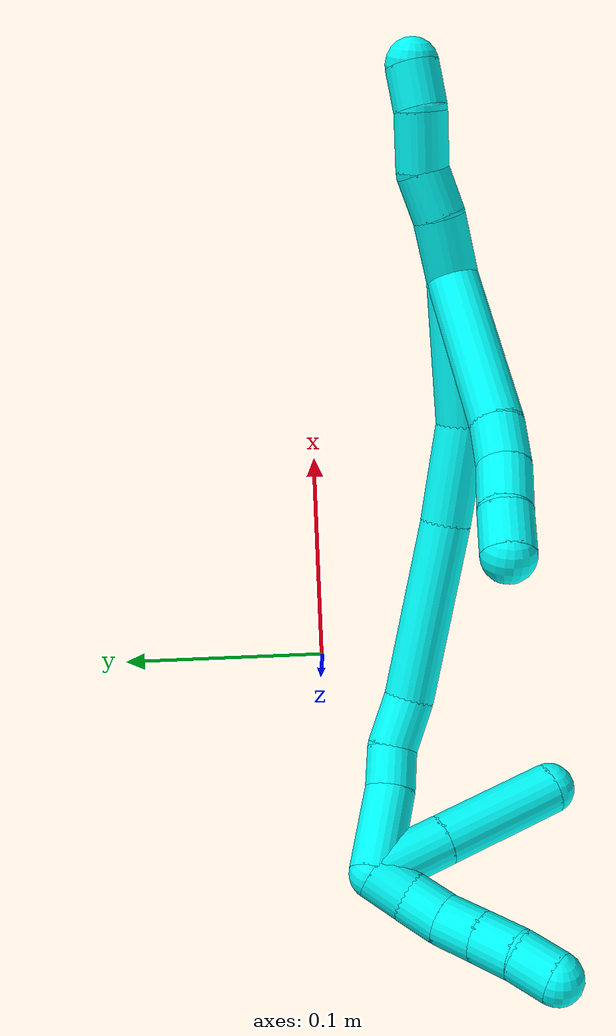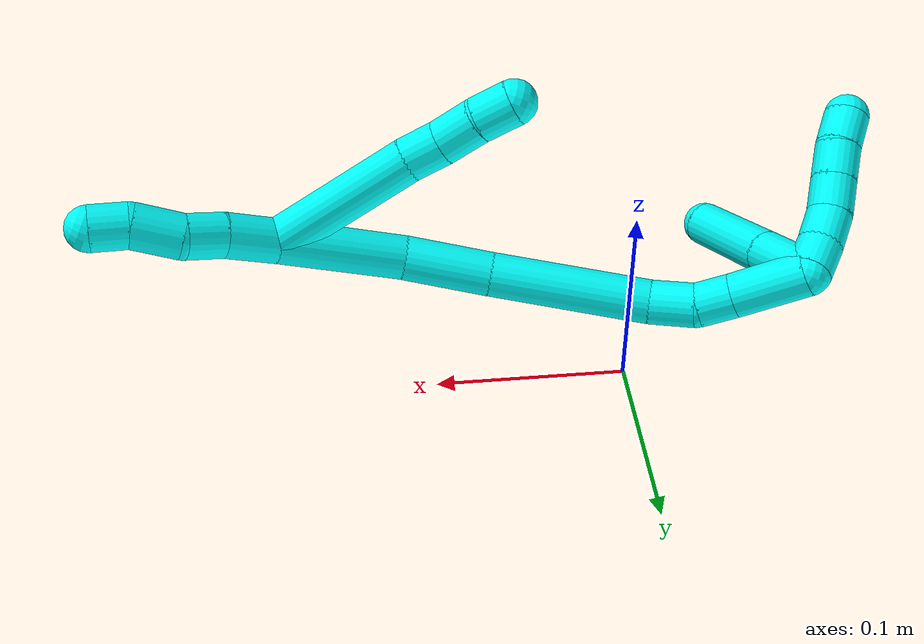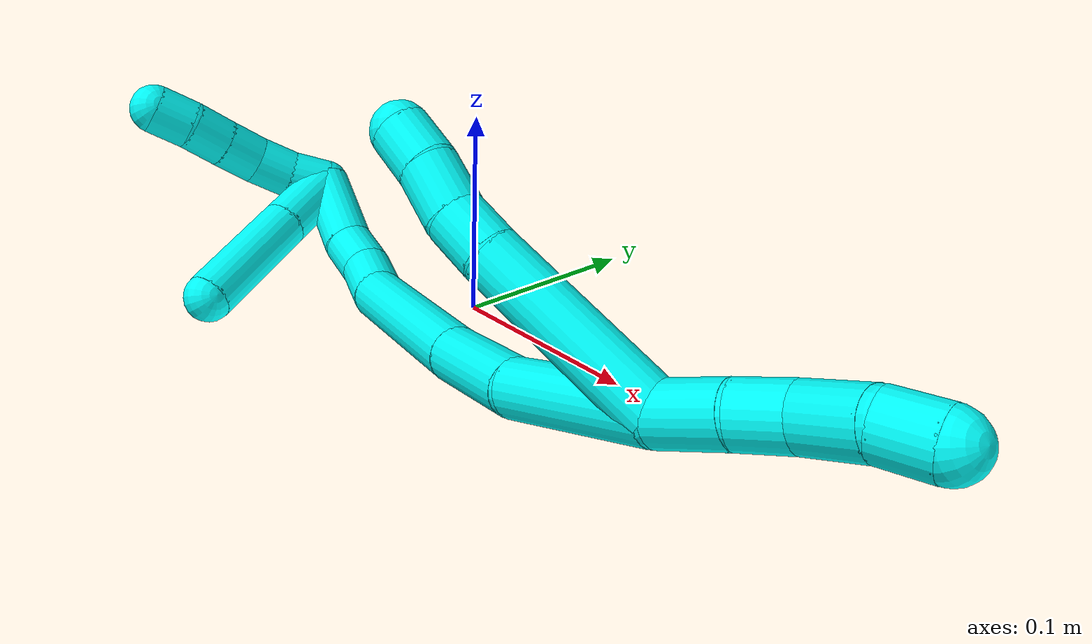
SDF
<sdf version="1.7">
 <world name="default">
  <model name="3">
   <static>0</static>
   <link name="3">
    <collision name="collision-cylinder-e_1_2_8">
     <pose>-0.033715 -0.006494 -0.023693 2.87405 -0.941091 -2.62431</pose>
     <geometry><cylinder><radius>0.0125</radius><length>0.083433</length></cylinder></geometry>
     <surface>
      <friction><ode><mu>1.16</mu><mu2>1.16</mu2><slip1>0</slip1><slip2>0</slip2></ode></friction>
      <contact><ode><kp>1e+06</kp><kd>1</kd><max_vel>0</max_vel><min_depth>0.001</min_depth></ode></contact>
     </surface>
    </collision>
    <visual name="visual-cylinder-e_1_2_8">
     <pose>-0.033715 -0.006494 -0.023693 2.87405 -0.941091 -2.62431</pose>
     <geometry><cylinder><radius>0.0125</radius><length>0.083433</length></cylinder></geometry>
     <material><ambient>0.003922 1 0.996078 1</ambient></material>
    </visual>
    <collision name="collision-cylinder-e_2_8_9">
     <pose>-0.075836 -0.013506 -0.053854 3.06181 -0.913425 -2.97949</pose>
     <geometry><cylinder><radius>0.0125</radius><length>0.021237</length></cylinder></geometry>
     <surface>
      <friction><ode><mu>1.16</mu><mu2>1.16</mu2><slip1>0</slip1><slip2>0</slip2></ode></friction>
      <contact><ode><kp>1e+06</kp><kd>1</kd><max_vel>0</max_vel><min_depth>0.001</min_depth></ode></contact>
     </surface>
    </collision>
    <visual name="visual-cylinder-e_2_8_9">
     <pose>-0.075836 -0.013506 -0.053854 3.06181 -0.913425 -2.97949</pose>
     <geometry><cylinder><radius>0.0125</radius><length>0.021237</length></cylinder></geometry>
     <material><ambient>0.003922 1 0.996078 1</ambient></material>
    </visual>
    <collision name="collision-cylinder-e_3_9_10">
     <pose>-0.094668 -0.012794 -0.066008 -2.92875 -1.06186 2.78166</pose>
     <geometry><cylinder><radius>0.0125</radius><length>0.023879</length></cylinder></geometry>
     <surface>
      <friction><ode><mu>1.16</mu><mu2>1.16</mu2><slip1>0</slip1><slip2>0</slip2></ode></friction>
      <contact><ode><kp>1e+06</kp><kd>1</kd><max_vel>0</max_vel><min_depth>0.001</min_depth></ode></contact>
     </surface>
    </collision>
    <visual name="visual-cylinder-e_3_9_10">
     <pose>-0.094668 -0.012794 -0.066008 -2.92875 -1.06186 2.78166</pose>
     <geometry><cylinder><radius>0.0125</radius><length>0.023879</length></cylinder></geometry>
     <material><ambient>0.003922 1 0.996078 1</ambient></material>
    </visual>
    <collision name="collision-cylinder-e_4_10_6">
     <pose>-0.113756 -0.01116 -0.078007 -3.07751 -0.940003 3.01557</pose>
     <geometry><cylinder><radius>0.0125</radius><length>0.021451</length></cylinder></geometry>
     <surface>
      <friction><ode><mu>1.16</mu><mu2>1.16</mu2><slip1>0</slip1><slip2>0</slip2></ode></friction>
      <contact><ode><kp>1e+06</kp><kd>1</kd><max_vel>0</max_vel><min_depth>0.001</min_depth></ode></contact>
     </surface>
    </collision>
    <visual name="visual-cylinder-e_4_10_6">
     <pose>-0.113756 -0.01116 -0.078007 -3.07751 -0.940003 3.01557</pose>
     <geometry><cylinder><radius>0.0125</radius><length>0.021451</length></cylinder></geometry>
     <material><ambient>0.003922 1 0.996078 1</ambient></material>
    </visual>
    <collision name="collision-cylinder-e_1_2_11">
     <pose>0.001477 0.003898 0.014406 -0.264258 0.098639 -0.01312</pose>
     <geometry><cylinder><radius>0.0125</radius><length>0.029993</length></cylinder></geometry>
     <surface>
      <friction><ode><mu>1.16</mu><mu2>1.16</mu2><slip1>0</slip1><slip2>0</slip2></ode></friction>
      <contact><ode><kp>1e+06</kp><kd>1</kd><max_vel>0</max_vel><min_depth>0.001</min_depth></ode></contact>
     </surface>
    </collision>
    <visual name="visual-cylinder-e_1_2_11">
     <pose>0.001477 0.003898 0.014406 -0.264258 0.098639 -0.01312</pose>
     <geometry><cylinder><radius>0.0125</radius><length>0.029993</length></cylinder></geometry>
     <material><ambient>0.003922 1 0.996078 1</ambient></material>
    </visual>
    <collision name="collision-cylinder-e_2_11_12">
     <pose>0.004957 0.011993 0.038849 -0.396052 0.182056 -0.036628</pose>
     <geometry><cylinder><radius>0.0125</radius><length>0.022125</length></cylinder></geometry>
     <surface>
      <friction><ode><mu>1.16</mu><mu2>1.16</mu2><slip1>0</slip1><slip2>0</slip2></ode></friction>
      <contact><ode><kp>1e+06</kp><kd>1</kd><max_vel>0</max_vel><min_depth>0.001</min_depth></ode></contact>
     </surface>
    </collision>
    <visual name="visual-cylinder-e_2_11_12">
     <pose>0.004957 0.011993 0.038849 -0.396052 0.182056 -0.036628</pose>
     <geometry><cylinder><radius>0.0125</radius><length>0.022125</length></cylinder></geometry>
     <material><ambient>0.003922 1 0.996078 1</ambient></material>
    </visual>
    <collision name="collision-cylinder-e_3_12_13">
     <pose>0.00831 0.017188 0.062469 -0.073351 0.098814 -0.003629</pose>
     <geometry><cylinder><radius>0.0125</radius><length>0.027372</length></cylinder></geometry>
     <surface>
      <friction><ode><mu>1.16</mu><mu2>1.16</mu2><slip1>0</slip1><slip2>0</slip2></ode></friction>
      <contact><ode><kp>1e+06</kp><kd>1</kd><max_vel>0</max_vel><min_depth>0.001</min_depth></ode></contact>
     </surface>
    </collision>
    <visual name="visual-cylinder-e_3_12_13">
     <pose>0.00831 0.017188 0.062469 -0.073351 0.098814 -0.003629</pose>
     <geometry><cylinder><radius>0.0125</radius><length>0.027372</length></cylinder></geometry>
     <material><ambient>0.003922 1 0.996078 1</ambient></material>
    </visual>
    <collision name="collision-cylinder-e_4_13_5">
     <pose>0.013387 0.020224 0.085386 -0.214881 0.371959 -0.040581</pose>
     <geometry><cylinder><radius>0.0125</radius><length>0.020509</length></cylinder></geometry>
     <surface>
      <friction><ode><mu>1.16</mu><mu2>1.16</mu2><slip1>0</slip1><slip2>0</slip2></ode></friction>
      <contact><ode><kp>1e+06</kp><kd>1</kd><max_vel>0</max_vel><min_depth>0.001</min_depth></ode></contact>
     </surface>
    </collision>
    <visual name="visual-cylinder-e_4_13_5">
     <pose>0.013387 0.020224 0.085386 -0.214881 0.371959 -0.040581</pose>
     <geometry><cylinder><radius>0.0125</radius><length>0.020509</length></cylinder></geometry>
     <material><ambient>0.003922 1 0.996078 1</ambient></material>
    </visual>
    <collision name="collision-cylinder-e_1_2_14">
     <pose>-0.006479 -0.00352 -0.034596 3.04019 -0.18419 -2.13678</pose>
     <geometry><cylinder><radius>0.0125</radius><length>0.070747</length></cylinder></geometry>
     <surface>
      <friction><ode><mu>1.16</mu><mu2>1.16</mu2><slip1>0</slip1><slip2>0</slip2></ode></friction>
      <contact><ode><kp>1e+06</kp><kd>1</kd><max_vel>0</max_vel><min_depth>0.001</min_depth></ode></contact>
     </surface>
    </collision>
    <visual name="visual-cylinder-e_1_2_14">
     <pose>-0.006479 -0.00352 -0.034596 3.04019 -0.18419 -2.13678</pose>
     <geometry><cylinder><radius>0.0125</radius><length>0.070747</length></cylinder></geometry>
     <material><ambient>0.003922 1 0.996078 1</ambient></material>
    </visual>
    <collision name="collision-cylinder-e_2_14_15">
     <pose>-0.01947 -0.00361 -0.092905 -2.99792 -0.265419 2.15281</pose>
     <geometry><cylinder><radius>0.0125</radius><length>0.049658</length></cylinder></geometry>
     <surface>
      <friction><ode><mu>1.16</mu><mu2>1.16</mu2><slip1>0</slip1><slip2>0</slip2></ode></friction>
      <contact><ode><kp>1e+06</kp><kd>1</kd><max_vel>0</max_vel><min_depth>0.001</min_depth></ode></contact>
     </surface>
    </collision>
    <visual name="visual-cylinder-e_2_14_15">
     <pose>-0.01947 -0.00361 -0.092905 -2.99792 -0.265419 2.15281</pose>
     <geometry><cylinder><radius>0.0125</radius><length>0.049658</length></cylinder></geometry>
     <material><ambient>0.003922 1 0.996078 1</ambient></material>
    </visual>
    <collision name="collision-cylinder-e_3_15_16">
     <pose>-0.040155 0.008526 -0.158563 -2.93696 -0.319494 2.00685</pose>
     <geometry><cylinder><radius>0.0125</radius><length>0.090245</length></cylinder></geometry>
     <surface>
      <friction><ode><mu>1.16</mu><mu2>1.16</mu2><slip1>0</slip1><slip2>0</slip2></ode></friction>
      <contact><ode><kp>1e+06</kp><kd>1</kd><max_vel>0</max_vel><min_depth>0.001</min_depth></ode></contact>
     </surface>
    </collision>
    <visual name="visual-cylinder-e_3_15_16">
     <pose>-0.040155 0.008526 -0.158563 -2.93696 -0.319494 2.00685</pose>
     <geometry><cylinder><radius>0.0125</radius><length>0.090245</length></cylinder></geometry>
     <material><ambient>0.003922 1 0.996078 1</ambient></material>
    </visual>
    <collision name="collision-cylinder-e_4_16_17">
     <pose>-0.060873 0.021725 -0.210927 -2.73439 -0.523207 1.82781</pose>
     <geometry><cylinder><radius>0.0125</radius><length>0.026199</length></cylinder></geometry>
     <surface>
      <friction><ode><mu>1.16</mu><mu2>1.16</mu2><slip1>0</slip1><slip2>0</slip2></ode></friction>
      <contact><ode><kp>1e+06</kp><kd>1</kd><max_vel>0</max_vel><min_depth>0.001</min_depth></ode></contact>
     </surface>
    </collision>
    <visual name="visual-cylinder-e_4_16_17">
     <pose>-0.060873 0.021725 -0.210927 -2.73439 -0.523207 1.82781</pose>
     <geometry><cylinder><radius>0.0125</radius><length>0.026199</length></cylinder></geometry>
     <material><ambient>0.003922 1 0.996078 1</ambient></material>
    </visual>
    <collision name="collision-cylinder-e_5_17_18">
     <pose>-0.074878 0.027236 -0.228531 -3.00095 -0.799187 2.81105</pose>
     <geometry><cylinder><radius>0.0125</radius><length>0.020813</length></cylinder></geometry>
     <surface>
      <friction><ode><mu>1.16</mu><mu2>1.16</mu2><slip1>0</slip1><slip2>0</slip2></ode></friction>
      <contact><ode><kp>1e+06</kp><kd>1</kd><max_vel>0</max_vel><min_depth>0.001</min_depth></ode></contact>
     </surface>
    </collision>
    <visual name="visual-cylinder-e_5_17_18">
     <pose>-0.074878 0.027236 -0.228531 -3.00095 -0.799187 2.81105</pose>
     <geometry><cylinder><radius>0.0125</radius><length>0.020813</length></cylinder></geometry>
     <material><ambient>0.003922 1 0.996078 1</ambient></material>
    </visual>
    <collision name="collision-cylinder-e_6_18_1">
     <pose>-0.099205 0.033378 -0.247436 -2.7294 -0.922002 2.34478</pose>
     <geometry><cylinder><radius>0.0125</radius><length>0.042339</length></cylinder></geometry>
     <surface>
      <friction><ode><mu>1.16</mu><mu2>1.16</mu2><slip1>0</slip1><slip2>0</slip2></ode></friction>
      <contact><ode><kp>1e+06</kp><kd>1</kd><max_vel>0</max_vel><min_depth>0.001</min_depth></ode></contact>
     </surface>
    </collision>
    <visual name="visual-cylinder-e_6_18_1">
     <pose>-0.099205 0.033378 -0.247436 -2.7294 -0.922002 2.34478</pose>
     <geometry><cylinder><radius>0.0125</radius><length>0.042339</length></cylinder></geometry>
     <material><ambient>0.003922 1 0.996078 1</ambient></material>
    </visual>
    <collision name="collision-cylinder-e_1_1_19">
     <pose>-0.109202 0.021145 -0.255287 1.35151 0.368698 0.29677</pose>
     <geometry><cylinder><radius>0.0125</radius><length>0.03813</length></cylinder></geometry>
     <surface>
      <friction><ode><mu>1.16</mu><mu2>1.16</mu2><slip1>0</slip1><slip2>0</slip2></ode></friction>
      <contact><ode><kp>1e+06</kp><kd>1</kd><max_vel>0</max_vel><min_depth>0.001</min_depth></ode></contact>
     </surface>
    </collision>
    <visual name="visual-cylinder-e_1_1_19">
     <pose>-0.109202 0.021145 -0.255287 1.35151 0.368698 0.29677</pose>
     <geometry><cylinder><radius>0.0125</radius><length>0.03813</length></cylinder></geometry>
     <material><ambient>0.003922 1 0.996078 1</ambient></material>
    </visual>
    <collision name="collision-cylinder-e_2_19_4">
     <pose>-0.091121 -0.024342 -0.24509 1.3495 0.370821 0.297888</pose>
     <geometry><cylinder><radius>0.0125</radius><length>0.06187</length></cylinder></geometry>
     <surface>
      <friction><ode><mu>1.16</mu><mu2>1.16</mu2><slip1>0</slip1><slip2>0</slip2></ode></friction>
      <contact><ode><kp>1e+06</kp><kd>1</kd><max_vel>0</max_vel><min_depth>0.001</min_depth></ode></contact>
     </surface>
    </collision>
    <visual name="visual-cylinder-e_2_19_4">
     <pose>-0.091121 -0.024342 -0.24509 1.3495 0.370821 0.297888</pose>
     <geometry><cylinder><radius>0.0125</radius><length>0.06187</length></cylinder></geometry>
     <material><ambient>0.003922 1 0.996078 1</ambient></material>
    </visual>
    <collision name="collision-cylinder-e_1_1_20">
     <pose>-0.121417 0.030558 -0.262039 1.91898 -0.563839 -0.783752</pose>
     <geometry><cylinder><radius>0.0125</radius><length>0.02</length></cylinder></geometry>
     <surface>
      <friction><ode><mu>1.16</mu><mu2>1.16</mu2><slip1>0</slip1><slip2>0</slip2></ode></friction>
      <contact><ode><kp>1e+06</kp><kd>1</kd><max_vel>0</max_vel><min_depth>0.001</min_depth></ode></contact>
     </surface>
    </collision>
    <visual name="visual-cylinder-e_1_1_20">
     <pose>-0.121417 0.030558 -0.262039 1.91898 -0.563839 -0.783752</pose>
     <geometry><cylinder><radius>0.0125</radius><length>0.02</length></cylinder></geometry>
     <material><ambient>0.003922 1 0.996078 1</ambient></material>
    </visual>
    <collision name="collision-cylinder-e_2_20_21">
     <pose>-0.133252 0.015139 -0.266344 1.75863 -0.706316 -0.837833</pose>
     <geometry><cylinder><radius>0.0125</radius><length>0.02</length></cylinder></geometry>
     <surface>
      <friction><ode><mu>1.16</mu><mu2>1.16</mu2><slip1>0</slip1><slip2>0</slip2></ode></friction>
      <contact><ode><kp>1e+06</kp><kd>1</kd><max_vel>0</max_vel><min_depth>0.001</min_depth></ode></contact>
     </surface>
    </collision>
    <visual name="visual-cylinder-e_2_20_21">
     <pose>-0.133252 0.015139 -0.266344 1.75863 -0.706316 -0.837833</pose>
     <geometry><cylinder><radius>0.0125</radius><length>0.02</length></cylinder></geometry>
     <material><ambient>0.003922 1 0.996078 1</ambient></material>
    </visual>
    <collision name="collision-cylinder-e_3_21_22">
     <pose>-0.146355 0.000182 -0.267241 1.50101 -0.722509 -0.67753</pose>
     <geometry><cylinder><radius>0.0125</radius><length>0.02</length></cylinder></geometry>
     <surface>
      <friction><ode><mu>1.16</mu><mu2>1.16</mu2><slip1>0</slip1><slip2>0</slip2></ode></friction>
      <contact><ode><kp>1e+06</kp><kd>1</kd><max_vel>0</max_vel><min_depth>0.001</min_depth></ode></contact>
     </surface>
    </collision>
    <visual name="visual-cylinder-e_3_21_22">
     <pose>-0.146355 0.000182 -0.267241 1.50101 -0.722509 -0.67753</pose>
     <geometry><cylinder><radius>0.0125</radius><length>0.02</length></cylinder></geometry>
     <material><ambient>0.003922 1 0.996078 1</ambient></material>
    </visual>
    <collision name="collision-cylinder-e_4_22_23">
     <pose>-0.159711 -0.014662 -0.266132 1.49132 -0.740078 -0.687998</pose>
     <geometry><cylinder><radius>0.0125</radius><length>0.02</length></cylinder></geometry>
     <surface>
      <friction><ode><mu>1.16</mu><mu2>1.16</mu2><slip1>0</slip1><slip2>0</slip2></ode></friction>
      <contact><ode><kp>1e+06</kp><kd>1</kd><max_vel>0</max_vel><min_depth>0.001</min_depth></ode></contact>
     </surface>
    </collision>
    <visual name="visual-cylinder-e_4_22_23">
     <pose>-0.159711 -0.014662 -0.266132 1.49132 -0.740078 -0.687998</pose>
     <geometry><cylinder><radius>0.0125</radius><length>0.02</length></cylinder></geometry>
     <material><ambient>0.003922 1 0.996078 1</ambient></material>
    </visual>
    <collision name="collision-cylinder-e_5_23_3">
     <pose>-0.172989 -0.029526 -0.266549 1.70372 -0.712149 -0.803688</pose>
     <geometry><cylinder><radius>0.0125</radius><length>0.02</length></cylinder></geometry>
     <surface>
      <friction><ode><mu>1.16</mu><mu2>1.16</mu2><slip1>0</slip1><slip2>0</slip2></ode></friction>
      <contact><ode><kp>1e+06</kp><kd>1</kd><max_vel>0</max_vel><min_depth>0.001</min_depth></ode></contact>
     </surface>
    </collision>
    <visual name="visual-cylinder-e_5_23_3">
     <pose>-0.172989 -0.029526 -0.266549 1.70372 -0.712149 -0.803688</pose>
     <geometry><cylinder><radius>0.0125</radius><length>0.02</length></cylinder></geometry>
     <material><ambient>0.003922 1 0.996078 1</ambient></material>
    </visual>
    <collision name="collision-sphere-3">
     <pose>-0.179524 -0.037029 -0.267552 0 -0 0</pose>
     <geometry><sphere><radius>0.0125</radius></sphere></geometry>
     <surface>
      <friction><ode><mu>1.16</mu><mu2>1.16</mu2><slip1>0</slip1><slip2>0</slip2></ode></friction>
      <contact><ode><kp>1e+06</kp><kd>1</kd><max_vel>0</max_vel><min_depth>0.001</min_depth></ode></contact>
     </surface>
    </collision>
    <visual name="visual-sphere-3">
     <pose>-0.179524 -0.037029 -0.267552 0 -0 0</pose>
     <geometry><sphere><radius>0.0125</radius></sphere></geometry>
     <material><ambient>0.003922 1 0.996078 1</ambient></material>
    </visual>
    <collision name="collision-sphere-23">
     <pose>-0.166455 -0.022023 -0.265546 0 -0 0</pose>
     <geometry><sphere><radius>0.0125</radius></sphere></geometry>
     <surface>
      <friction><ode><mu>1.16</mu><mu2>1.16</mu2><slip1>0</slip1><slip2>0</slip2></ode></friction>
      <contact><ode><kp>1e+06</kp><kd>1</kd><max_vel>0</max_vel><min_depth>0.001</min_depth></ode></contact>
     </surface>
    </collision>
    <visual name="visual-sphere-23">
     <pose>-0.166455 -0.022023 -0.265546 0 -0 0</pose>
     <geometry><sphere><radius>0.0125</radius></sphere></geometry>
     <material><ambient>0.003922 1 0.996078 1</ambient></material>
    </visual>
    <collision name="collision-sphere-22">
     <pose>-0.152968 -0.007301 -0.266718 0 -0 0</pose>
     <geometry><sphere><radius>0.0125</radius></sphere></geometry>
     <surface>
      <friction><ode><mu>1.16</mu><mu2>1.16</mu2><slip1>0</slip1><slip2>0</slip2></ode></friction>
      <contact><ode><kp>1e+06</kp><kd>1</kd><max_vel>0</max_vel><min_depth>0.001</min_depth></ode></contact>
     </surface>
    </collision>
    <visual name="visual-sphere-22">
     <pose>-0.152968 -0.007301 -0.266718 0 -0 0</pose>
     <geometry><sphere><radius>0.0125</radius></sphere></geometry>
     <material><ambient>0.003922 1 0.996078 1</ambient></material>
    </visual>
    <collision name="collision-sphere-21">
     <pose>-0.139742 0.007665 -0.267764 0 -0 0</pose>
     <geometry><sphere><radius>0.0125</radius></sphere></geometry>
     <surface>
      <friction><ode><mu>1.16</mu><mu2>1.16</mu2><slip1>0</slip1><slip2>0</slip2></ode></friction>
      <contact><ode><kp>1e+06</kp><kd>1</kd><max_vel>0</max_vel><min_depth>0.001</min_depth></ode></contact>
     </surface>
    </collision>
    <visual name="visual-sphere-21">
     <pose>-0.139742 0.007665 -0.267764 0 -0 0</pose>
     <geometry><sphere><radius>0.0125</radius></sphere></geometry>
     <material><ambient>0.003922 1 0.996078 1</ambient></material>
    </visual>
    <collision name="collision-sphere-20">
     <pose>-0.126762 0.022613 -0.264923 0 -0 0</pose>
     <geometry><sphere><radius>0.0125</radius></sphere></geometry>
     <surface>
      <friction><ode><mu>1.16</mu><mu2>1.16</mu2><slip1>0</slip1><slip2>0</slip2></ode></friction>
      <contact><ode><kp>1e+06</kp><kd>1</kd><max_vel>0</max_vel><min_depth>0.001</min_depth></ode></contact>
     </surface>
    </collision>
    <visual name="visual-sphere-20">
     <pose>-0.126762 0.022613 -0.264923 0 -0 0</pose>
     <geometry><sphere><radius>0.0125</radius></sphere></geometry>
     <material><ambient>0.003922 1 0.996078 1</ambient></material>
    </visual>
    <collision name="collision-sphere-4">
     <pose>-0.07991 -0.052472 -0.238762 0 -0 0</pose>
     <geometry><sphere><radius>0.0125</radius></sphere></geometry>
     <surface>
      <friction><ode><mu>1.16</mu><mu2>1.16</mu2><slip1>0</slip1><slip2>0</slip2></ode></friction>
      <contact><ode><kp>1e+06</kp><kd>1</kd><max_vel>0</max_vel><min_depth>0.001</min_depth></ode></contact>
     </surface>
    </collision>
    <visual name="visual-sphere-4">
     <pose>-0.07991 -0.052472 -0.238762 0 -0 0</pose>
     <geometry><sphere><radius>0.0125</radius></sphere></geometry>
     <material><ambient>0.003922 1 0.996078 1</ambient></material>
    </visual>
    <collision name="collision-sphere-11">
     <pose>0.002954 0.007796 0.028811 0 -0 0</pose>
     <geometry><sphere><radius>0.0125</radius></sphere></geometry>
     <surface>
      <friction><ode><mu>1.16</mu><mu2>1.16</mu2><slip1>0</slip1><slip2>0</slip2></ode></friction>
      <contact><ode><kp>1e+06</kp><kd>1</kd><max_vel>0</max_vel><min_depth>0.001</min_depth></ode></contact>
     </surface>
    </collision>
    <visual name="visual-sphere-11">
     <pose>0.002954 0.007796 0.028811 0 -0 0</pose>
     <geometry><sphere><radius>0.0125</radius></sphere></geometry>
     <material><ambient>0.003922 1 0.996078 1</ambient></material>
    </visual>
    <collision name="collision-sphere-6">
     <pose>-0.122417 -0.010755 -0.08432 0 -0 0</pose>
     <geometry><sphere><radius>0.0125</radius></sphere></geometry>
     <surface>
      <friction><ode><mu>1.16</mu><mu2>1.16</mu2><slip1>0</slip1><slip2>0</slip2></ode></friction>
      <contact><ode><kp>1e+06</kp><kd>1</kd><max_vel>0</max_vel><min_depth>0.001</min_depth></ode></contact>
     </surface>
    </collision>
    <visual name="visual-sphere-6">
     <pose>-0.122417 -0.010755 -0.08432 0 -0 0</pose>
     <geometry><sphere><radius>0.0125</radius></sphere></geometry>
     <material><ambient>0.003922 1 0.996078 1</ambient></material>
    </visual>
    <collision name="collision-sphere-10">
     <pose>-0.105094 -0.011565 -0.071694 0 -0 0</pose>
     <geometry><sphere><radius>0.0125</radius></sphere></geometry>
     <surface>
      <friction><ode><mu>1.16</mu><mu2>1.16</mu2><slip1>0</slip1><slip2>0</slip2></ode></friction>
      <contact><ode><kp>1e+06</kp><kd>1</kd><max_vel>0</max_vel><min_depth>0.001</min_depth></ode></contact>
     </surface>
    </collision>
    <visual name="visual-sphere-10">
     <pose>-0.105094 -0.011565 -0.071694 0 -0 0</pose>
     <geometry><sphere><radius>0.0125</radius></sphere></geometry>
     <material><ambient>0.003922 1 0.996078 1</ambient></material>
    </visual>
    <collision name="collision-sphere-9">
     <pose>-0.084242 -0.014023 -0.060322 0 -0 0</pose>
     <geometry><sphere><radius>0.0125</radius></sphere></geometry>
     <surface>
      <friction><ode><mu>1.16</mu><mu2>1.16</mu2><slip1>0</slip1><slip2>0</slip2></ode></friction>
      <contact><ode><kp>1e+06</kp><kd>1</kd><max_vel>0</max_vel><min_depth>0.001</min_depth></ode></contact>
     </surface>
    </collision>
    <visual name="visual-sphere-9">
     <pose>-0.084242 -0.014023 -0.060322 0 -0 0</pose>
     <geometry><sphere><radius>0.0125</radius></sphere></geometry>
     <material><ambient>0.003922 1 0.996078 1</ambient></material>
    </visual>
    <collision name="collision-sphere-2">
     <geometry><sphere><radius>0.0125</radius></sphere></geometry>
     <surface>
      <friction><ode><mu>1.16</mu><mu2>1.16</mu2><slip1>0</slip1><slip2>0</slip2></ode></friction>
      <contact><ode><kp>1e+06</kp><kd>1</kd><max_vel>0</max_vel><min_depth>0.001</min_depth></ode></contact>
     </surface>
    </collision>
    <visual name="visual-sphere-2">
     <geometry><sphere><radius>0.0125</radius></sphere></geometry>
     <material><ambient>0.003922 1 0.996078 1</ambient></material>
    </visual>
    <collision name="collision-sphere-19">
     <pose>-0.102331 0.003787 -0.251419 0 -0 0</pose>
     <geometry><sphere><radius>0.0125</radius></sphere></geometry>
     <surface>
      <friction><ode><mu>1.16</mu><mu2>1.16</mu2><slip1>0</slip1><slip2>0</slip2></ode></friction>
      <contact><ode><kp>1e+06</kp><kd>1</kd><max_vel>0</max_vel><min_depth>0.001</min_depth></ode></contact>
     </surface>
    </collision>
    <visual name="visual-sphere-19">
     <pose>-0.102331 0.003787 -0.251419 0 -0 0</pose>
     <geometry><sphere><radius>0.0125</radius></sphere></geometry>
     <material><ambient>0.003922 1 0.996078 1</ambient></material>
    </visual>
    <collision name="collision-sphere-8">
     <pose>-0.06743 -0.012989 -0.047386 0 -0 0</pose>
     <geometry><sphere><radius>0.0125</radius></sphere></geometry>
     <surface>
      <friction><ode><mu>1.16</mu><mu2>1.16</mu2><slip1>0</slip1><slip2>0</slip2></ode></friction>
      <contact><ode><kp>1e+06</kp><kd>1</kd><max_vel>0</max_vel><min_depth>0.001</min_depth></ode></contact>
     </surface>
    </collision>
    <visual name="visual-sphere-8">
     <pose>-0.06743 -0.012989 -0.047386 0 -0 0</pose>
     <geometry><sphere><radius>0.0125</radius></sphere></geometry>
     <material><ambient>0.003922 1 0.996078 1</ambient></material>
    </visual>
    <collision name="collision-sphere-12">
     <pose>0.00696 0.01619 0.048886 0 -0 0</pose>
     <geometry><sphere><radius>0.0125</radius></sphere></geometry>
     <surface>
      <friction><ode><mu>1.16</mu><mu2>1.16</mu2><slip1>0</slip1><slip2>0</slip2></ode></friction>
      <contact><ode><kp>1e+06</kp><kd>1</kd><max_vel>0</max_vel><min_depth>0.001</min_depth></ode></contact>
     </surface>
    </collision>
    <visual name="visual-sphere-12">
     <pose>0.00696 0.01619 0.048886 0 -0 0</pose>
     <geometry><sphere><radius>0.0125</radius></sphere></geometry>
     <material><ambient>0.003922 1 0.996078 1</ambient></material>
    </visual>
    <collision name="collision-sphere-13">
     <pose>0.00966 0.018187 0.076052 0 -0 0</pose>
     <geometry><sphere><radius>0.0125</radius></sphere></geometry>
     <surface>
      <friction><ode><mu>1.16</mu><mu2>1.16</mu2><slip1>0</slip1><slip2>0</slip2></ode></friction>
      <contact><ode><kp>1e+06</kp><kd>1</kd><max_vel>0</max_vel><min_depth>0.001</min_depth></ode></contact>
     </surface>
    </collision>
    <visual name="visual-sphere-13">
     <pose>0.00966 0.018187 0.076052 0 -0 0</pose>
     <geometry><sphere><radius>0.0125</radius></sphere></geometry>
     <material><ambient>0.003922 1 0.996078 1</ambient></material>
    </visual>
    <collision name="collision-sphere-5">
     <pose>0.017114 0.022261 0.094719 0 -0 0</pose>
     <geometry><sphere><radius>0.0125</radius></sphere></geometry>
     <surface>
      <friction><ode><mu>1.16</mu><mu2>1.16</mu2><slip1>0</slip1><slip2>0</slip2></ode></friction>
      <contact><ode><kp>1e+06</kp><kd>1</kd><max_vel>0</max_vel><min_depth>0.001</min_depth></ode></contact>
     </surface>
    </collision>
    <visual name="visual-sphere-5">
     <pose>0.017114 0.022261 0.094719 0 -0 0</pose>
     <geometry><sphere><radius>0.0125</radius></sphere></geometry>
     <material><ambient>0.003922 1 0.996078 1</ambient></material>
    </visual>
    <collision name="collision-sphere-14">
     <pose>-0.012957 -0.00704 -0.069193 0 -0 0</pose>
     <geometry><sphere><radius>0.0125</radius></sphere></geometry>
     <surface>
      <friction><ode><mu>1.16</mu><mu2>1.16</mu2><slip1>0</slip1><slip2>0</slip2></ode></friction>
      <contact><ode><kp>1e+06</kp><kd>1</kd><max_vel>0</max_vel><min_depth>0.001</min_depth></ode></contact>
     </surface>
    </collision>
    <visual name="visual-sphere-14">
     <pose>-0.012957 -0.00704 -0.069193 0 -0 0</pose>
     <geometry><sphere><radius>0.0125</radius></sphere></geometry>
     <material><ambient>0.003922 1 0.996078 1</ambient></material>
    </visual>
    <collision name="collision-sphere-15">
     <pose>-0.025983 -0.000179 -0.116618 0 -0 0</pose>
     <geometry><sphere><radius>0.0125</radius></sphere></geometry>
     <surface>
      <friction><ode><mu>1.16</mu><mu2>1.16</mu2><slip1>0</slip1><slip2>0</slip2></ode></friction>
      <contact><ode><kp>1e+06</kp><kd>1</kd><max_vel>0</max_vel><min_depth>0.001</min_depth></ode></contact>
     </surface>
    </collision>
    <visual name="visual-sphere-15">
     <pose>-0.025983 -0.000179 -0.116618 0 -0 0</pose>
     <geometry><sphere><radius>0.0125</radius></sphere></geometry>
     <material><ambient>0.003922 1 0.996078 1</ambient></material>
    </visual>
    <collision name="collision-sphere-16">
     <pose>-0.054328 0.017231 -0.200508 0 -0 0</pose>
     <geometry><sphere><radius>0.0125</radius></sphere></geometry>
     <surface>
      <friction><ode><mu>1.16</mu><mu2>1.16</mu2><slip1>0</slip1><slip2>0</slip2></ode></friction>
      <contact><ode><kp>1e+06</kp><kd>1</kd><max_vel>0</max_vel><min_depth>0.001</min_depth></ode></contact>
     </surface>
    </collision>
    <visual name="visual-sphere-16">
     <pose>-0.054328 0.017231 -0.200508 0 -0 0</pose>
     <geometry><sphere><radius>0.0125</radius></sphere></geometry>
     <material><ambient>0.003922 1 0.996078 1</ambient></material>
    </visual>
    <collision name="collision-sphere-17">
     <pose>-0.067419 0.026219 -0.221347 0 -0 0</pose>
     <geometry><sphere><radius>0.0125</radius></sphere></geometry>
     <surface>
      <friction><ode><mu>1.16</mu><mu2>1.16</mu2><slip1>0</slip1><slip2>0</slip2></ode></friction>
      <contact><ode><kp>1e+06</kp><kd>1</kd><max_vel>0</max_vel><min_depth>0.001</min_depth></ode></contact>
     </surface>
    </collision>
    <visual name="visual-sphere-17">
     <pose>-0.067419 0.026219 -0.221347 0 -0 0</pose>
     <geometry><sphere><radius>0.0125</radius></sphere></geometry>
     <material><ambient>0.003922 1 0.996078 1</ambient></material>
    </visual>
    <collision name="collision-sphere-18">
     <pose>-0.082337 0.028254 -0.235716 0 -0 0</pose>
     <geometry><sphere><radius>0.0125</radius></sphere></geometry>
     <surface>
      <friction><ode><mu>1.16</mu><mu2>1.16</mu2><slip1>0</slip1><slip2>0</slip2></ode></friction>
      <contact><ode><kp>1e+06</kp><kd>1</kd><max_vel>0</max_vel><min_depth>0.001</min_depth></ode></contact>
     </surface>
    </collision>
    <visual name="visual-sphere-18">
     <pose>-0.082337 0.028254 -0.235716 0 -0 0</pose>
     <geometry><sphere><radius>0.0125</radius></sphere></geometry>
     <material><ambient>0.003922 1 0.996078 1</ambient></material>
    </visual>
    <collision name="collision-sphere-1">
     <pose>-0.116073 0.038502 -0.259155 0 -0 0</pose>
     <geometry><sphere><radius>0.0125</radius></sphere></geometry>
     <surface>
      <friction><ode><mu>1.16</mu><mu2>1.16</mu2><slip1>0</slip1><slip2>0</slip2></ode></friction>
      <contact><ode><kp>1e+06</kp><kd>1</kd><max_vel>0</max_vel><min_depth>0.001</min_depth></ode></contact>
     </surface>
    </collision>
    <visual name="visual-sphere-1">
     <pose>-0.116073 0.038502 -0.259155 0 -0 0</pose>
     <geometry><sphere><radius>0.0125</radius></sphere></geometry>
     <material><ambient>0.003922 1 0.996078 1</ambient></material>
    </visual>
    <inertial>
     <pose>-0.060462 0.002824 -0.126947 0 -0 0</pose>
     <mass>0.75</mass>
     <inertia>
      <ixx>-3.1e-05</ixx>
      <ixy>0</ixy>
      <ixz>0</ixz>
      <iyy>0.000164</iyy>
      <iyz>0</iyz>
      <izz>8.2e-05</izz>
     </inertia>
    </inertial>
   </link>
   <pose>0.180784 -0.069465 0.049195 0.173886 1.11059 0.123839</pose>
  </model>
 </world>
</sdf>
